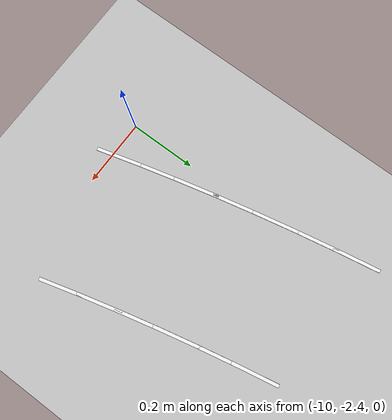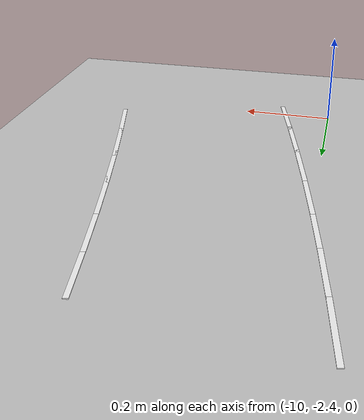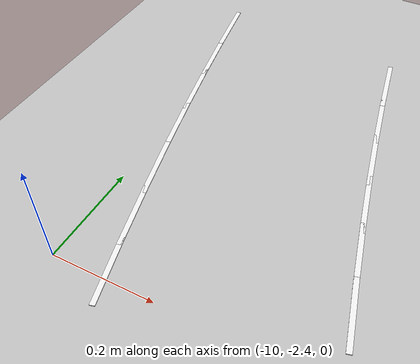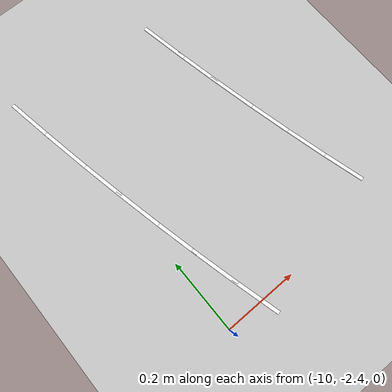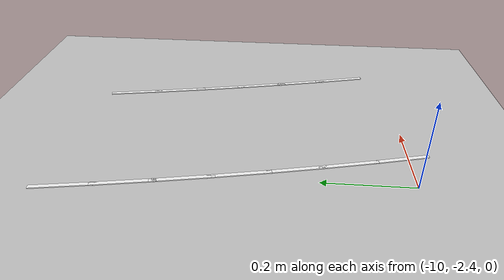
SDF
<sdf version="1.7">
 <world name="default">
  <model name="ground_plane">
   <static>1</static>
   <link name="link">
    <collision name="collision">
     <geometry><plane><normal>0 0 1</normal><size>100 100</size></plane></geometry>
     <surface>
      <contact><collide_bitmask>65535</collide_bitmask></contact>
      <friction><ode><mu>100</mu><mu2>50</mu2></ode></friction>
     </surface>
    </collision>
    <visual name="visual">
     <cast_shadows>0</cast_shadows>
     <geometry><plane><normal>0 0 1</normal><size>100 100</size></plane></geometry>
     <material>
      <script><uri>file://media/materials/scripts/gazebo.material</uri><name>Gazebo/Grey</name></script>
     </material>
    </visual>
   </link>
  </model>
  <model name="lane_line_right_387">
   <static>1</static>
   <link name="link">
    <pose>0 0 -0.004 0 -0 0</pose>
    <visual name="visual">
     <geometry><box><size>0.1408 0.01 0.01</size></box></geometry>
     <material><ambient>1 1 1 1</ambient><diffuse>1 1 1 1</diffuse></material>
    </visual>
    <collision name="collision"><geometry><box><size>0.1408 0.01 0.01</size></box></geometry></collision>
   </link>
   <pose>-10.0579 -1.67209 0 0 0 -1.39681</pose>
  </model>
  <model name="lane_line_left_388">
   <static>1</static>
   <link name="link">
    <pose>0 0 -0.004 0 -0 0</pose>
    <visual name="visual">
     <geometry><box><size>0.14 0.01 0.01</size></box></geometry>
     <material><ambient>1 1 1 1</ambient><diffuse>1 1 1 1</diffuse></material>
    </visual>
    <collision name="collision"><geometry><box><size>0.14 0.01 0.01</size></box></geometry></collision>
   </link>
   <pose>-9.6428 -1.71844 0 0 0 -1.38244</pose>
  </model>
  <model name="lane_line_right_388">
   <static>1</static>
   <link name="link">
    <pose>0 0 -0.004 0 -0 0</pose>
    <visual name="visual">
     <geometry><box><size>0.14 0.01 0.01</size></box></geometry>
     <material><ambient>1 1 1 1</ambient><diffuse>1 1 1 1</diffuse></material>
    </visual>
    <collision name="collision"><geometry><box><size>0.14 0.01 0.01</size></box></geometry></collision>
   </link>
   <pose>-10.0357 -1.79334 0 0 0 -1.38244</pose>
  </model>
  <model name="lane_line_left_389">
   <static>1</static>
   <link name="link">
    <pose>0 0 -0.004 0 -0 0</pose>
    <visual name="visual">
     <geometry><box><size>0.1392 0.01 0.01</size></box></geometry>
     <material><ambient>1 1 1 1</ambient><diffuse>1 1 1 1</diffuse></material>
    </visual>
    <collision name="collision"><geometry><box><size>0.1392 0.01 0.01</size></box></geometry></collision>
   </link>
   <pose>-9.62012 -1.83289 0 0 0 -1.36779</pose>
  </model>
  <model name="lane_line_right_389">
   <static>1</static>
   <link name="link">
    <pose>0 0 -0.004 0 -0 0</pose>
    <visual name="visual">
     <geometry><box><size>0.1392 0.01 0.01</size></box></geometry>
     <material><ambient>1 1 1 1</ambient><diffuse>1 1 1 1</diffuse></material>
    </visual>
    <collision name="collision"><geometry><box><size>0.1392 0.01 0.01</size></box></geometry></collision>
   </link>
   <pose>-10.0119 -1.91353 0 0 0 -1.36779</pose>
  </model>
  <model name="lane_line_left_390">
   <static>1</static>
   <link name="link">
    <pose>0 0 -0.004 0 -0 0</pose>
    <visual name="visual">
     <geometry><box><size>0.1383 0.01 0.01</size></box></geometry>
     <material><ambient>1 1 1 1</ambient><diffuse>1 1 1 1</diffuse></material>
    </visual>
    <collision name="collision"><geometry><box><size>0.1383 0.01 0.01</size></box></geometry></collision>
   </link>
   <pose>-9.59594 -1.94609 0 0 0 -1.35284</pose>
  </model>
  <model name="lane_line_right_390">
   <static>1</static>
   <link name="link">
    <pose>0 0 -0.004 0 -0 0</pose>
    <visual name="visual">
     <geometry><box><size>0.1383 0.01 0.01</size></box></geometry>
     <material><ambient>1 1 1 1</ambient><diffuse>1 1 1 1</diffuse></material>
    </visual>
    <collision name="collision"><geometry><box><size>0.1383 0.01 0.01</size></box></geometry></collision>
   </link>
   <pose>-9.98647 -2.03258 0 0 0 -1.35284</pose>
  </model>
  <model name="lane_line_left_391">
   <static>1</static>
   <link name="link">
    <pose>0 0 -0.004 0 -0 0</pose>
    <visual name="visual">
     <geometry><box><size>0.1374 0.01 0.01</size></box></geometry>
     <material><ambient>1 1 1 1</ambient><diffuse>1 1 1 1</diffuse></material>
    </visual>
    <collision name="collision"><geometry><box><size>0.1374 0.01 0.01</size></box></geometry></collision>
   </link>
   <pose>-9.57026 -2.05798 0 0 0 -1.33755</pose>
  </model>
  <model name="lane_line_right_391">
   <static>1</static>
   <link name="link">
    <pose>0 0 -0.004 0 -0 0</pose>
    <visual name="visual">
     <geometry><box><size>0.1374 0.01 0.01</size></box></geometry>
     <material><ambient>1 1 1 1</ambient><diffuse>1 1 1 1</diffuse></material>
    </visual>
    <collision name="collision"><geometry><box><size>0.1374 0.01 0.01</size></box></geometry></collision>
   </link>
   <pose>-9.95943 -2.15043 0 0 0 -1.33755</pose>
  </model>
  <model name="lane_line_left_392">
   <static>1</static>
   <link name="link">
    <pose>0 0 -0.004 0 -0 0</pose>
    <visual name="visual">
     <geometry><box><size>0.1364 0.01 0.01</size></box></geometry>
     <material><ambient>1 1 1 1</ambient><diffuse>1 1 1 1</diffuse></material>
    </visual>
    <collision name="collision"><geometry><box><size>0.1364 0.01 0.01</size></box></geometry></collision>
   </link>
   <pose>-9.5431 -2.16847 0 0 0 -1.32191</pose>
  </model>
  <model name="lane_line_right_392">
   <static>1</static>
   <link name="link">
    <pose>0 0 -0.004 0 -0 0</pose>
    <visual name="visual">
     <geometry><box><size>0.1364 0.01 0.01</size></box></geometry>
     <material><ambient>1 1 1 1</ambient><diffuse>1 1 1 1</diffuse></material>
    </visual>
    <collision name="collision"><geometry><box><size>0.1364 0.01 0.01</size></box></geometry></collision>
   </link>
   <pose>-9.93077 -2.267 0 0 0 -1.32191</pose>
  </model>
  <model name="lane_line_left_393">
   <static>1</static>
   <link name="link">
    <pose>0 0 -0.004 0 -0 0</pose>
    <visual name="visual">
     <geometry><box><size>0.1354 0.01 0.01</size></box></geometry>
     <material><ambient>1 1 1 1</ambient><diffuse>1 1 1 1</diffuse></material>
    </visual>
    <collision name="collision"><geometry><box><size>0.1354 0.01 0.01</size></box></geometry></collision>
   </link>
   <pose>-9.51446 -2.2775 0 0 0 -1.30589</pose>
  </model>
  <model name="lane_line_right_393">
   <static>1</static>
   <link name="link">
    <pose>0 0 -0.004 0 -0 0</pose>
    <visual name="visual">
     <geometry><box><size>0.1354 0.01 0.01</size></box></geometry>
     <material><ambient>1 1 1 1</ambient><diffuse>1 1 1 1</diffuse></material>
    </visual>
    <collision name="collision"><geometry><box><size>0.1354 0.01 0.01</size></box></geometry></collision>
   </link>
   <pose>-9.90051 -2.38222 0 0 0 -1.30589</pose>
  </model>
 </world>
</sdf>
